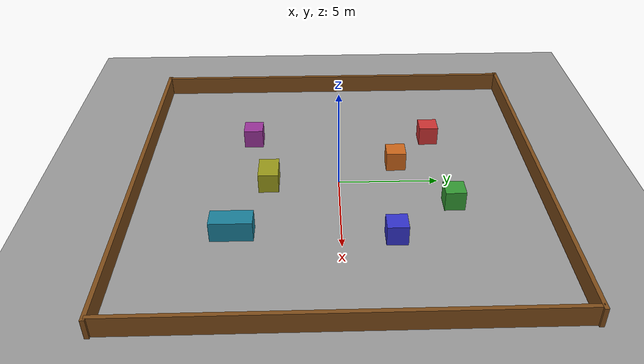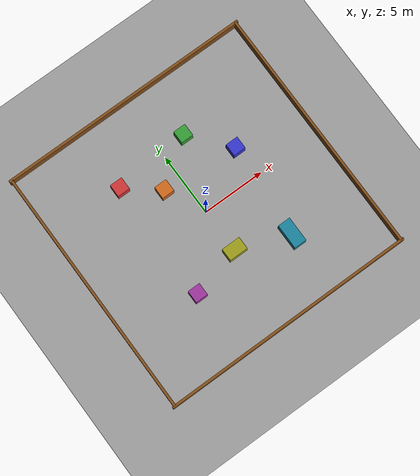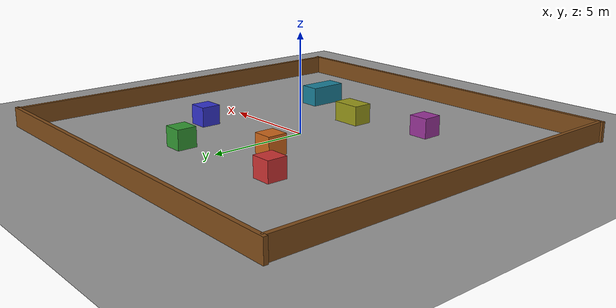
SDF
<?xml version="1.0"?>
<sdf version="1.9">
  <world name="anhc_simple_world">

    <physics name="anhc_physics" type="ode">
      <max_step_size>0.001</max_step_size>
      <real_time_factor>1.0</real_time_factor>
      <real_time_update_rate>1000</real_time_update_rate>
    </physics>

    <!-- GPU Lidar plugin phải được load ở world level -->
    <plugin filename="gz-sim-sensors-system"
            name="gz::sim::systems::Sensors">
      <render_engine>ogre2</render_engine>
    </plugin>

    <plugin filename="gz-sim-user-commands-system"
            name="gz::sim::systems::UserCommands"/>

    <plugin filename="gz-sim-scene-broadcaster-system"
            name="gz::sim::systems::SceneBroadcaster"/>

    <plugin filename="gz-sim-physics-system"
            name="gz::sim::systems::Physics"/>

    <plugin filename="gz-sim-imu-system"
            name="gz::sim::systems::Imu"/>

    <scene>
      <ambient>0.6 0.6 0.6 1.0</ambient>
      <background>0.7 0.8 0.9 1.0</background>
      <shadows>true</shadows>
    </scene>

    <light name="anhc_sun" type="directional">
      <cast_shadows>true</cast_shadows>
      <pose>0 0 20 0 0 0</pose>
      <diffuse>0.9 0.9 0.9 1.0</diffuse>
      <specular>0.3 0.3 0.3 1.0</specular>
      <direction>-0.5 0.2 -0.9</direction>
    </light>

    <!-- Ground Plane -->
    <model name="anhc_ground_plane">
      <static>true</static>
      <pose>0 0 0 0 0 0</pose>
      <link name="ground_link">
        <collision name="ground_collision">
          <geometry>
            <plane><normal>0 0 1</normal><size>40 40</size></plane>
          </geometry>
        </collision>
        <visual name="ground_visual">
          <geometry>
            <plane><normal>0 0 1</normal><size>40 40</size></plane>
          </geometry>
          <material>
            <ambient>0.4 0.4 0.4 1</ambient>
            <diffuse>0.6 0.6 0.6 1</diffuse>
          </material>
        </visual>
      </link>
    </model>

    <!-- Walls -->
    <model name="anhc_wall_north">
      <static>true</static><pose>0 10 0.5 0 0 0</pose>
      <link name="link">
        <collision name="col"><geometry><box><size>20.4 0.2 1.0</size></box></geometry></collision>
        <visual name="vis"><geometry><box><size>20.4 0.2 1.0</size></box></geometry>
          <material><ambient>0.5 0.3 0.1 1</ambient></material></visual>
      </link>
    </model>
    <model name="anhc_wall_south">
      <static>true</static><pose>0 -10 0.5 0 0 0</pose>
      <link name="link">
        <collision name="col"><geometry><box><size>20.4 0.2 1.0</size></box></geometry></collision>
        <visual name="vis"><geometry><box><size>20.4 0.2 1.0</size></box></geometry>
          <material><ambient>0.5 0.3 0.1 1</ambient></material></visual>
      </link>
    </model>
    <model name="anhc_wall_east">
      <static>true</static><pose>10 0 0.5 0 0 0</pose>
      <link name="link">
        <collision name="col"><geometry><box><size>0.2 20.0 1.0</size></box></geometry></collision>
        <visual name="vis"><geometry><box><size>0.2 20.0 1.0</size></box></geometry>
          <material><ambient>0.5 0.3 0.1 1</ambient></material></visual>
      </link>
    </model>
    <model name="anhc_wall_west">
      <static>true</static><pose>-10 0 0.5 0 0 0</pose>
      <link name="link">
        <collision name="col"><geometry><box><size>0.2 20.0 1.0</size></box></geometry></collision>
        <visual name="vis"><geometry><box><size>0.2 20.0 1.0</size></box></geometry>
          <material><ambient>0.5 0.3 0.1 1</ambient></material></visual>
      </link>
    </model>

    <!-- Obstacles -->
    <model name="anhc_obstacle_B1">
      <static>true</static><pose>-4.0 5.0 0.5 0 0 0</pose>
      <link name="link">
        <collision name="col"><geometry><box><size>1.0 1.0 1.0</size></box></geometry></collision>
        <visual name="vis"><geometry><box><size>1.0 1.0 1.0</size></box></geometry>
          <material><ambient>0.8 0.2 0.2 1</ambient></material></visual>
      </link>
    </model>
    <model name="anhc_obstacle_B2">
      <static>true</static><pose>-1.5 3.0 0.5 0 0 0</pose>
      <link name="link">
        <collision name="col"><geometry><box><size>1.0 1.0 1.0</size></box></geometry></collision>
        <visual name="vis"><geometry><box><size>1.0 1.0 1.0</size></box></geometry>
          <material><ambient>0.8 0.4 0.1 1</ambient></material></visual>
      </link>
    </model>
    <model name="anhc_obstacle_B3">
      <static>true</static><pose>2.0 5.5 0.5 0 0 0</pose>
      <link name="link">
        <collision name="col"><geometry><box><size>1.0 1.0 1.0</size></box></geometry></collision>
        <visual name="vis"><geometry><box><size>1.0 1.0 1.0</size></box></geometry>
          <material><ambient>0.2 0.6 0.2 1</ambient></material></visual>
      </link>
    </model>
    <model name="anhc_obstacle_B4">
      <static>true</static><pose>4.5 2.5 0.5 0 0 0</pose>
      <link name="link">
        <collision name="col"><geometry><box><size>1.0 1.0 1.0</size></box></geometry></collision>
        <visual name="vis"><geometry><box><size>1.0 1.0 1.0</size></box></geometry>
          <material><ambient>0.2 0.2 0.8 1</ambient></material></visual>
      </link>
    </model>
    <model name="anhc_obstacle_B5">
      <static>true</static><pose>-4.0 -4.5 0.5 0 0 0</pose>
      <link name="link">
        <collision name="col"><geometry><box><size>1.0 1.0 1.0</size></box></geometry></collision>
        <visual name="vis"><geometry><box><size>1.0 1.0 1.0</size></box></geometry>
          <material><ambient>0.6 0.2 0.6 1</ambient></material></visual>
      </link>
    </model>
    <model name="anhc_obstacle_B6">
      <static>true</static><pose>0.0 -3.5 0.5 0 0 0</pose>
      <link name="link">
        <collision name="col"><geometry><box><size>1.5 1.0 1.0</size></box></geometry></collision>
        <visual name="vis"><geometry><box><size>1.5 1.0 1.0</size></box></geometry>
          <material><ambient>0.6 0.6 0.1 1</ambient></material></visual>
      </link>
    </model>
    <model name="anhc_obstacle_B7">
      <static>true</static><pose>4.0 -5.0 0.5 0 0 0</pose>
      <link name="link">
        <collision name="col"><geometry><box><size>1.0 2.0 1.0</size></box></geometry></collision>
        <visual name="vis"><geometry><box><size>1.0 2.0 1.0</size></box></geometry>
          <material><ambient>0.1 0.5 0.6 1</ambient></material></visual>
      </link>
    </model>

    <gravity>0 0 -9.81</gravity>

    <gui fullscreen="0">
      <camera name="anhc_user_camera">
        <pose>0 -18 15 0 0.6 1.57</pose>
      </camera>
    </gui>

  </world>
</sdf>
